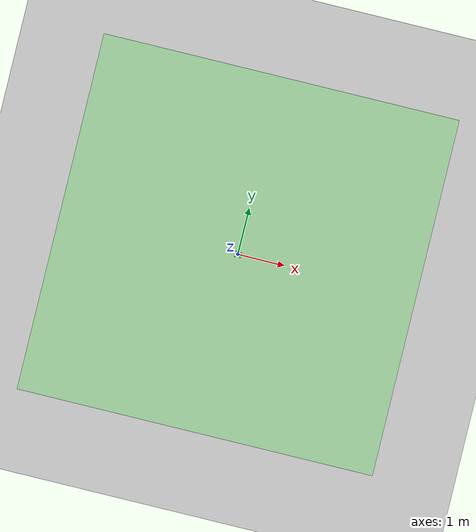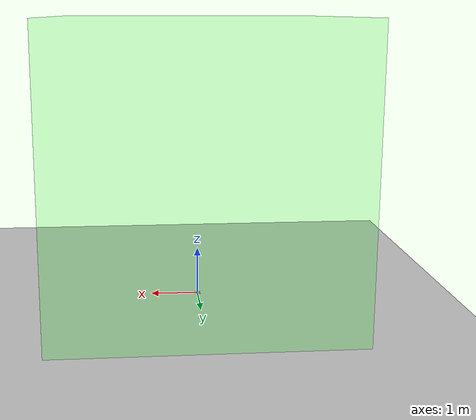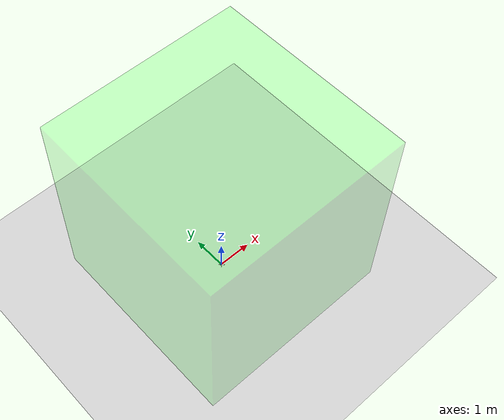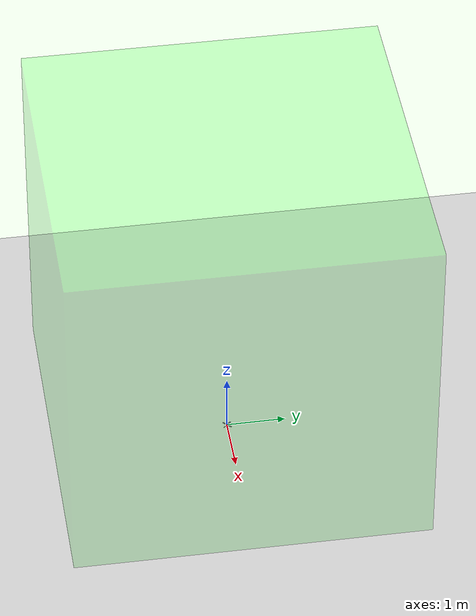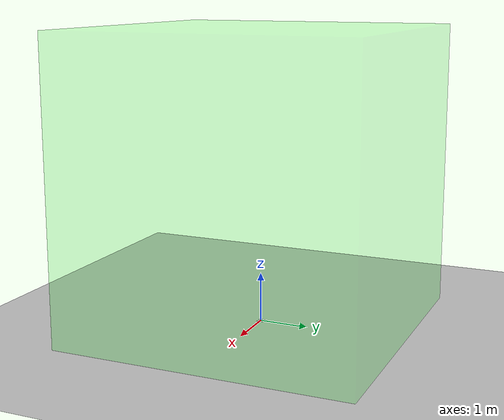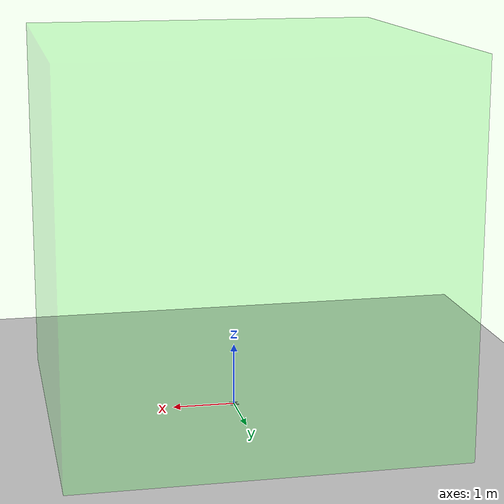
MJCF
<mujoco model="quadrotor_mini">
    <compiler angle="degree" coordinate="local"/>
    <option timestep="0.002" gravity="0 0 -9.81" density="1.225" viscosity="1.789e-5" integrator="RK4" />
    <default>
        <geom contype="0" conaffinity="0" condim="1" solref="0.001 1" density="0"/>
        <default class="collision">
          <geom group="2" contype="1" type="box" density="0" />
        </default>
    </default>
    <asset>
        <texture builtin="gradient" height="100" width="100" rgb1="0.6 0.8 1.0" rgb2="1 1 1" type="skybox"/>
        <texture name="texplane" builtin="checker" height="100" width="100" rgb1="0.7 0.8 1.0" rgb2="1 1 1" type="2d"/>
        <material name="matplane" texture="texplane" texrepeat="10 10" reflectance="0.2" shininess="0.2" specular="0.5"/>
    </asset>

    <worldbody>
        <light cutoff="100" diffuse="1 1 1" dir="0 0 -1.3" directional="true" exponent="1" pos="0 0 10" specular=".1 .1 .1"/>
        <geom conaffinity="1" condim="3" material="matplane" name="floor" pos="0 0 -0.025" rgba="0.8 0.8 0.8 1" size="10 10 0.2" type="plane"/>
        <geom type="box" size="3 3 3" pos="0 0 2.94" rgba="0 1 0 0.05" conaffinity="0"/>

        <body name="quadrotor" pos="0 0 0">
            <freejoint/>
            <inertial pos="0 0 0.015" mass="0.280" diaginertia="236.40e-6 236.40e-6 303.16e-6" />
            <geom class="collision" type="box" pos="0 0 0" quat="1 0 0 0" size="0.025 0.025 0.02" rgba="0 0.15 0.47 1" />
            <site name="body_frame" pos="0 0 0" quat="1 0 0 0"/>
            <geom type="box" pos="0.04 -0.04 0.0" size="0.03 .005 .005" quat="0.383 0.0 0.0 0.924" rgba=".8 .8 .8 1" />
            <geom type="box" pos="-0.04 -0.04 0.0" size="0.03 .005 .005" quat="-0.383 0.0 0.0 0.924" rgba=".8 .8 .8 1" />
            <geom type="box" pos="-0.04 0.04 0.0" size="0.03 .005 .005" quat="0.924 0.0 0.0 -0.383" rgba=".8 .8 .8 1" />
            <geom type="box" pos="0.04 0.04 0.0" size="0.03 .005 .005" quat="0.924 0.0 0.0 0.383" rgba=".8 .8 .8 1" />

            <geom type="cylinder" pos="0.05785 -0.05785 0.005" size="0.0381 0.001" quat="1 0 0 0" rgba="1 0.67 0 0.5" />
            <site name="motor0" type="cylinder" pos="0.05785 -0.05785 0" size="0.01 0.0025" quat="1 0 0 0" rgba=".8 .8 .8 1" />

            <geom type="cylinder" pos="-0.05785 -0.05785 0.005" size="0.0381 0.001" quat="1 0 0 0" rgba="1 0.67 0 0.5" />
            <site name="motor1" type="cylinder" pos="-0.05785 -0.05785 0" size="0.01 0.0025" quat="1 0 0 0" rgba=".8 .8 .8 1" />

            <geom type="cylinder" pos="-0.05785 0.05785 0.005" size="0.0381 0.001" quat="1 0 0 0" rgba="1 0.67 0 0.5" />
            <site name="motor2" type="cylinder" pos="-0.05785 0.05785 0" size="0.01 0.0025" quat="1 0 0 0" rgba=".8 .8 .8 1" />

            <geom type="cylinder" pos="0.05785 0.05785 0.005" size="0.0381 0.001" quat="1 0 0 0" rgba="1 0.67 0 0.5" />
            <site name="motor3" type="cylinder" pos="0.05785 0.05785 0" size="0.01 .00025" quat="1 0 0 0" rgba=".8 .8 .8 1" />

            <site name="x_axis" type="box" pos=".1 .0 .0" size=".1 .004 .004" quat="1 0 0 0" rgba="1 0 0 0.2" />
            <site name="y_axis" type="box" pos=".0 .1 .0" size=".1 .004 .004" quat=".707 0 0 .707" rgba="0 1 0 0.2" />
            <site name="z_axis" type="box" pos=".0 .0 .1" size=".1 .004 .004" quat="-.707 0 .707 0" rgba="0 0 1 0.2" />
        </body>

    </worldbody>

    <actuator>
        <motor name="Motor0" ctrllimited="true" ctrlrange="0 5.63" gear="0  0. 1. 0. 0. -0.005119" site="motor0" />
        <motor name="Motor1" ctrllimited="true" ctrlrange="0 5.63" gear="0  0. 1. 0. 0. 0.005119" site="motor1" />
        <motor name="Motor2" ctrllimited="true" ctrlrange="0 5.63" gear="0  0. 1. 0. 0. -0.005119" site="motor2" />
        <motor name="Motor3" ctrllimited="true" ctrlrange="0 5.63" gear="0  0. 1. 0. 0. 0.005119" site="motor3" />
    </actuator>

    <sensor>
        <framepos name="Body_pos" objtype="site" objname="body_frame"/>       <!-- datasensor[0:3] -->
        <framequat name="Body_quat" objtype="site" objname="body_frame"/>     <!-- datasensor[3:7] -->
        <framelinvel name="Body_linvel" objtype="site" objname="body_frame" /> <!-- datasensor[7:10] -->
        <gyro name="Body_angvel_local" site="body_frame"/>                    <!-- datasensor[10:13] -->
    </sensor>
</mujoco>
